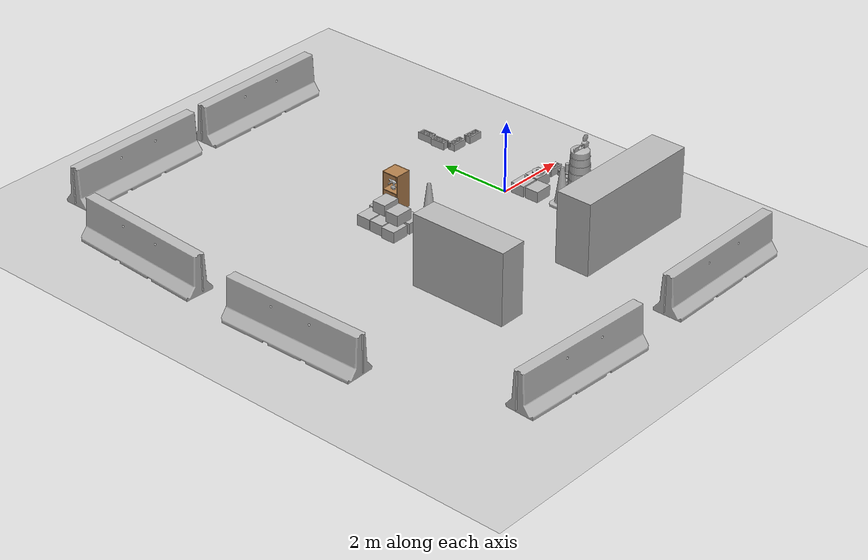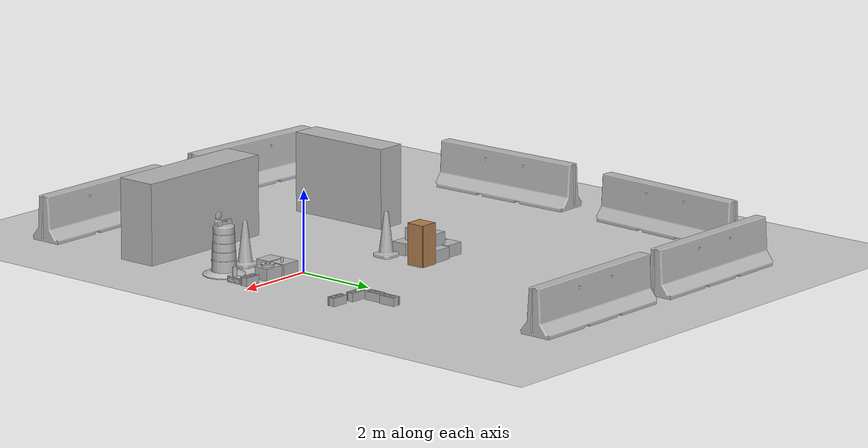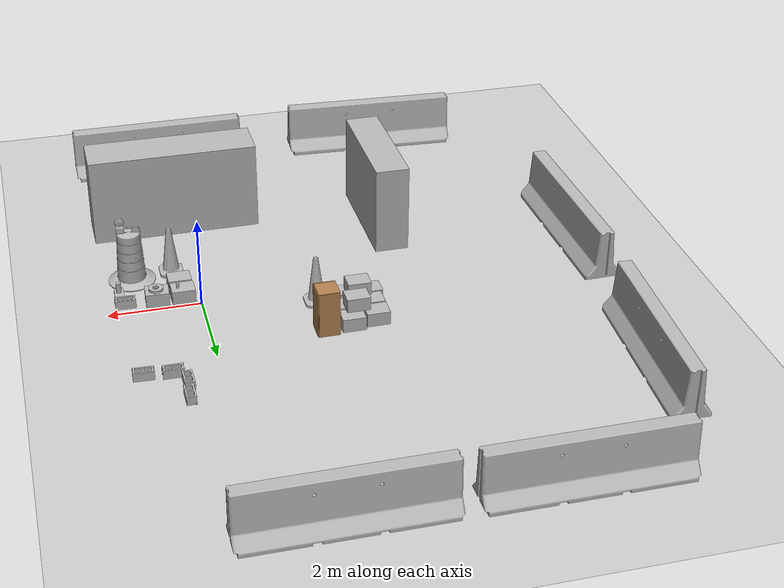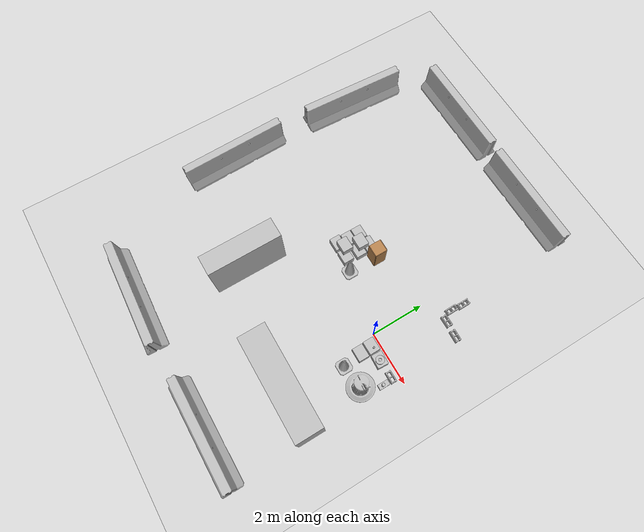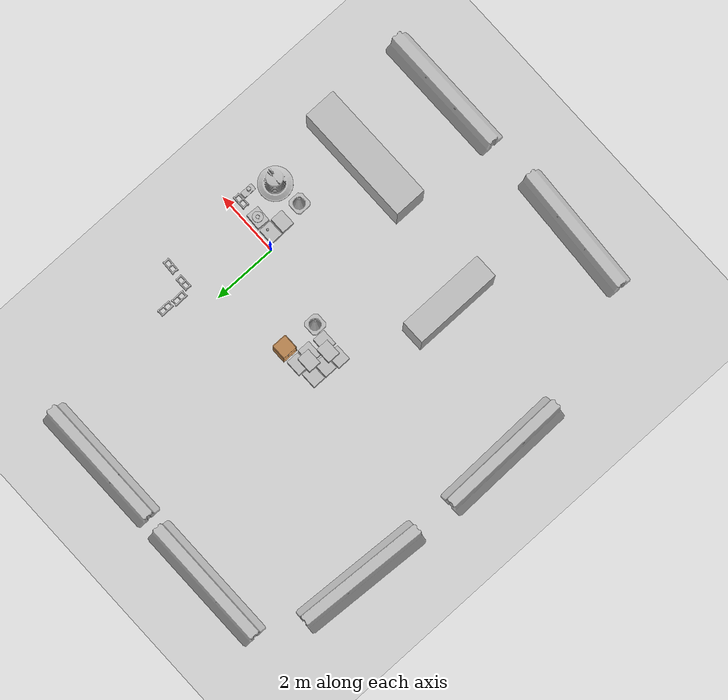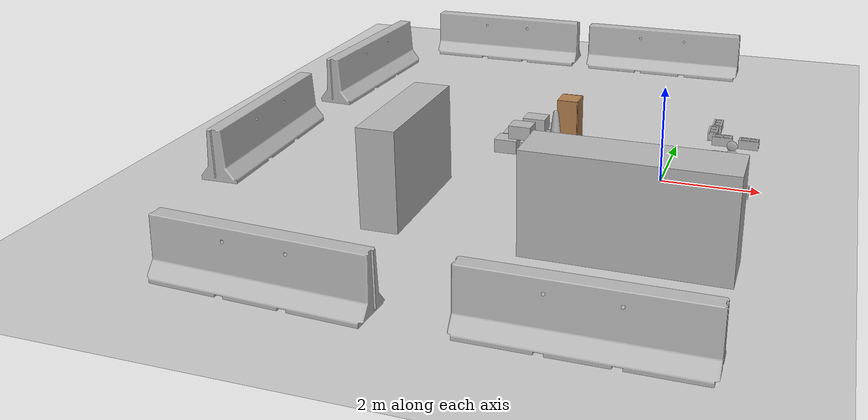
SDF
<sdf version="1.6">
 <world name="default">
  <model name="ground_plane">
   <static>1</static>
   <link name="link">
    <collision name="collision">
     <geometry><plane><normal>0 0 1</normal><size>100 100</size></plane></geometry>
     <surface>
      <contact><collide_bitmask>65535</collide_bitmask></contact>
      <friction><ode><mu>100</mu><mu2>50</mu2></ode></friction>
     </surface>
    </collision>
    <visual name="visual">
     <cast_shadows>0</cast_shadows>
     <geometry><plane><normal>0 0 1</normal><size>100 100</size></plane></geometry>
     <material>
      <script><uri>file://media/materials/scripts/gazebo.material</uri><name>Gazebo/Grey</name></script>
     </material>
    </visual>
   </link>
  </model>
  <model name="cinder_block_1">
   <link name="link">
    <inertial>
     <pose>0 0 0.1016 0 -0 0</pose>
     <mass>5</mass>
     <inertia>
      <ixx>0.028705</ixx>
      <ixy>0</ixy>
      <iyy>0.073708</iyy>
      <ixz>0</ixz>
      <iyz>0</iyz>
      <izz>0.06908</izz>
     </inertia>
    </inertial>
    <visual name="visual">
     <geometry><mesh><uri>model://cinder_block/meshes/cinder_block.dae</uri></mesh></geometry>
    </visual>
    <collision name="left">
     <pose>0 -0.08465 0.1016 0 -0 0</pose>
     <geometry><box><size>0.43495 0.0339 0.2032</size></box></geometry>
     <surface>
      <contact><ode><max_vel>0.1</max_vel><min_depth>0.001</min_depth></ode></contact>
      <friction><ode><mu>1</mu><mu2>1</mu2></ode></friction>
     </surface>
    </collision>
    <collision name="right">
     <pose>0 0.08465 0.1016 0 -0 0</pose>
     <geometry><box><size>0.43495 0.0339 0.2032</size></box></geometry>
     <surface>
      <contact><ode><max_vel>0.1</max_vel><min_depth>0.001</min_depth></ode></contact>
      <friction><ode><mu>1</mu><mu2>1</mu2></ode></friction>
     </surface>
    </collision>
    <collision name="front">
     <pose>0.18625 0 0.1016 0 -0 0</pose>
     <geometry><box><size>0.0339 0.1354 0.203</size></box></geometry>
     <surface>
      <contact><ode><max_vel>0.1</max_vel><min_depth>0.001</min_depth></ode></contact>
      <friction><ode><mu>1</mu><mu2>1</mu2></ode></friction>
     </surface>
    </collision>
    <collision name="middle">
     <pose>0 0 0.1016 0 -0 0</pose>
     <geometry><box><size>0.0339 0.1354 0.203</size></box></geometry>
     <surface>
      <contact><ode><max_vel>0.1</max_vel><min_depth>0.001</min_depth></ode></contact>
      <friction><ode><mu>1</mu><mu2>1</mu2></ode></friction>
     </surface>
    </collision>
    <collision name="back">
     <pose>-0.18625 0 0.1016 0 -0 0</pose>
     <geometry><box><size>0.0339 0.1354 0.203</size></box></geometry>
     <surface>
      <contact><ode><max_vel>0.1</max_vel><min_depth>0.001</min_depth></ode></contact>
      <friction><ode><mu>1</mu><mu2>1</mu2></ode></friction>
     </surface>
    </collision>
   </link>
   <pose>0.951418 2.44157 -0.000578 -8.1e-05 -3.7e-05 0</pose>
  </model>
  <model name="cinder_block_3">
   <link name="link">
    <inertial>
     <pose>0 0 0.1016 0 -0 0</pose>
     <mass>5</mass>
     <inertia>
      <ixx>0.028705</ixx>
      <ixy>0</ixy>
      <iyy>0.073708</iyy>
      <ixz>0</ixz>
      <iyz>0</iyz>
      <izz>0.06908</izz>
     </inertia>
    </inertial>
    <visual name="visual">
     <geometry><mesh><uri>model://cinder_block/meshes/cinder_block.dae</uri></mesh></geometry>
    </visual>
    <collision name="left">
     <pose>0 -0.08465 0.1016 0 -0 0</pose>
     <geometry><box><size>0.43495 0.0339 0.2032</size></box></geometry>
     <surface>
      <contact><ode><max_vel>0.1</max_vel><min_depth>0.001</min_depth></ode></contact>
      <friction><ode><mu>1</mu><mu2>1</mu2></ode></friction>
     </surface>
    </collision>
    <collision name="right">
     <pose>0 0.08465 0.1016 0 -0 0</pose>
     <geometry><box><size>0.43495 0.0339 0.2032</size></box></geometry>
     <surface>
      <contact><ode><max_vel>0.1</max_vel><min_depth>0.001</min_depth></ode></contact>
      <friction><ode><mu>1</mu><mu2>1</mu2></ode></friction>
     </surface>
    </collision>
    <collision name="front">
     <pose>0.18625 0 0.1016 0 -0 0</pose>
     <geometry><box><size>0.0339 0.1354 0.203</size></box></geometry>
     <surface>
      <contact><ode><max_vel>0.1</max_vel><min_depth>0.001</min_depth></ode></contact>
      <friction><ode><mu>1</mu><mu2>1</mu2></ode></friction>
     </surface>
    </collision>
    <collision name="middle">
     <pose>0 0 0.1016 0 -0 0</pose>
     <geometry><box><size>0.0339 0.1354 0.203</size></box></geometry>
     <surface>
      <contact><ode><max_vel>0.1</max_vel><min_depth>0.001</min_depth></ode></contact>
      <friction><ode><mu>1</mu><mu2>1</mu2></ode></friction>
     </surface>
    </collision>
    <collision name="back">
     <pose>-0.18625 0 0.1016 0 -0 0</pose>
     <geometry><box><size>0.0339 0.1354 0.203</size></box></geometry>
     <surface>
      <contact><ode><max_vel>0.1</max_vel><min_depth>0.001</min_depth></ode></contact>
      <friction><ode><mu>1</mu><mu2>1</mu2></ode></friction>
     </surface>
    </collision>
   </link>
   <pose>1.53729 2.39602 -6e-06 3.2e-05 -1.3e-05 3.10413</pose>
  </model>
  <model name="cinder_block_7">
   <link name="link">
    <inertial>
     <pose>0 0 0.1016 0 -0 0</pose>
     <mass>5</mass>
     <inertia>
      <ixx>0.028705</ixx>
      <ixy>0</ixy>
      <iyy>0.073708</iyy>
      <ixz>0</ixz>
      <iyz>0</iyz>
      <izz>0.06908</izz>
     </inertia>
    </inertial>
    <visual name="visual">
     <geometry><mesh><uri>model://cinder_block/meshes/cinder_block.dae</uri></mesh></geometry>
    </visual>
    <collision name="left">
     <pose>0 -0.08465 0.1016 0 -0 0</pose>
     <geometry><box><size>0.43495 0.0339 0.2032</size></box></geometry>
     <surface>
      <contact><ode><max_vel>0.1</max_vel><min_depth>0.001</min_depth></ode></contact>
      <friction><ode><mu>1</mu><mu2>1</mu2></ode></friction>
     </surface>
    </collision>
    <collision name="right">
     <pose>0 0.08465 0.1016 0 -0 0</pose>
     <geometry><box><size>0.43495 0.0339 0.2032</size></box></geometry>
     <surface>
      <contact><ode><max_vel>0.1</max_vel><min_depth>0.001</min_depth></ode></contact>
      <friction><ode><mu>1</mu><mu2>1</mu2></ode></friction>
     </surface>
    </collision>
    <collision name="front">
     <pose>0.18625 0 0.1016 0 -0 0</pose>
     <geometry><box><size>0.0339 0.1354 0.203</size></box></geometry>
     <surface>
      <contact><ode><max_vel>0.1</max_vel><min_depth>0.001</min_depth></ode></contact>
      <friction><ode><mu>1</mu><mu2>1</mu2></ode></friction>
     </surface>
    </collision>
    <collision name="middle">
     <pose>0 0 0.1016 0 -0 0</pose>
     <geometry><box><size>0.0339 0.1354 0.203</size></box></geometry>
     <surface>
      <contact><ode><max_vel>0.1</max_vel><min_depth>0.001</min_depth></ode></contact>
      <friction><ode><mu>1</mu><mu2>1</mu2></ode></friction>
     </surface>
    </collision>
    <collision name="back">
     <pose>-0.18625 0 0.1016 0 -0 0</pose>
     <geometry><box><size>0.0339 0.1354 0.203</size></box></geometry>
     <surface>
      <contact><ode><max_vel>0.1</max_vel><min_depth>0.001</min_depth></ode></contact>
      <friction><ode><mu>1</mu><mu2>1</mu2></ode></friction>
     </surface>
    </collision>
   </link>
   <pose>0.703882 2.81906 -6e-06 5.1e-05 4e-06 1.58968</pose>
  </model>
  <model name="cinder_block_9">
   <link name="link">
    <inertial>
     <pose>0 0 0.1016 0 -0 0</pose>
     <mass>5</mass>
     <inertia>
      <ixx>0.028705</ixx>
      <ixy>0</ixy>
      <iyy>0.073708</iyy>
      <ixz>0</ixz>
      <iyz>0</iyz>
      <izz>0.06908</izz>
     </inertia>
    </inertial>
    <visual name="visual">
     <geometry><mesh><uri>model://cinder_block/meshes/cinder_block.dae</uri></mesh></geometry>
    </visual>
    <collision name="left">
     <pose>0 -0.08465 0.1016 0 -0 0</pose>
     <geometry><box><size>0.43495 0.0339 0.2032</size></box></geometry>
     <surface>
      <contact><ode><max_vel>0.1</max_vel><min_depth>0.001</min_depth></ode></contact>
      <friction><ode><mu>1</mu><mu2>1</mu2></ode></friction>
     </surface>
    </collision>
    <collision name="right">
     <pose>0 0.08465 0.1016 0 -0 0</pose>
     <geometry><box><size>0.43495 0.0339 0.2032</size></box></geometry>
     <surface>
      <contact><ode><max_vel>0.1</max_vel><min_depth>0.001</min_depth></ode></contact>
      <friction><ode><mu>1</mu><mu2>1</mu2></ode></friction>
     </surface>
    </collision>
    <collision name="front">
     <pose>0.18625 0 0.1016 0 -0 0</pose>
     <geometry><box><size>0.0339 0.1354 0.203</size></box></geometry>
     <surface>
      <contact><ode><max_vel>0.1</max_vel><min_depth>0.001</min_depth></ode></contact>
      <friction><ode><mu>1</mu><mu2>1</mu2></ode></friction>
     </surface>
    </collision>
    <collision name="middle">
     <pose>0 0 0.1016 0 -0 0</pose>
     <geometry><box><size>0.0339 0.1354 0.203</size></box></geometry>
     <surface>
      <contact><ode><max_vel>0.1</max_vel><min_depth>0.001</min_depth></ode></contact>
      <friction><ode><mu>1</mu><mu2>1</mu2></ode></friction>
     </surface>
    </collision>
    <collision name="back">
     <pose>-0.18625 0 0.1016 0 -0 0</pose>
     <geometry><box><size>0.0339 0.1354 0.203</size></box></geometry>
     <surface>
      <contact><ode><max_vel>0.1</max_vel><min_depth>0.001</min_depth></ode></contact>
      <friction><ode><mu>1</mu><mu2>1</mu2></ode></friction>
     </surface>
    </collision>
   </link>
   <pose>0.746762 3.29994 -1.2e-05 5.8e-05 5e-06 1.57094</pose>
  </model>
  <model name="brick_box_3x1x3">
   <static>1</static>
   <link name="chassis">
    <pose>0 0 1.5 0 -0 0</pose>
    <collision name="collision"><geometry><box><size>2.75 0.75 2</size></box></geometry></collision>
    <visual name="visual">
     <geometry>
      <mesh><uri>model://brick_box_3x1x3/meshes/simple_box.dae</uri><scale>2.75 0.75 2</scale></mesh>
     </geometry>
     <material>
      <script>
       <uri>model://brick_box_3x1x3/materials/scripts</uri>
       <uri>model://brick_box_3x1x3/materials/textures</uri>
       <name>BrickBox/Diffuse</name>
      </script>
     </material>
    </visual>
   </link>
   <pose>-4.50649 -2.57251 -0.500406 0 -0 1.57353</pose>
  </model>
  <model name="brick_box_3x1x3_0">
   <static>1</static>
   <link name="chassis">
    <pose>0 0 1.5 0 -0 0</pose>
    <collision name="collision"><geometry><box><size>3.75 1 2</size></box></geometry></collision>
    <visual name="visual">
     <geometry>
      <mesh><uri>model://brick_box_3x1x3/meshes/simple_box.dae</uri><scale>3.75 1 2</scale></mesh>
     </geometry>
     <material>
      <script>
       <uri>model://brick_box_3x1x3/materials/scripts</uri>
       <uri>model://brick_box_3x1x3/materials/textures</uri>
       <name>BrickBox/Diffuse</name>
      </script>
     </material>
    </visual>
   </link>
   <pose>0.059682 -3.58681 -0.4981 0 -0 0</pose>
  </model>
  <model name="cardboard_box">
   <pose>0.351262 -0.309418 0.148999 0 -0 0.008584</pose>
   <link name="link">
    <inertial>
     <mass>2</mass>
     <inertia>
      <ixx>0.0416667</ixx>
      <ixy>0</ixy>
      <ixz>0</ixz>
      <iyy>0.0566667</iyy>
      <iyz>0</iyz>
      <izz>0.0683333</izz>
     </inertia>
    </inertial>
    <collision name="collision">
     <geometry><box><size>0.5 0.4 0.3</size></box></geometry>
     <surface>
      <friction><ode><mu>1</mu><mu2>1</mu2></ode></friction>
      <contact><ode><kp>1e+07</kp><kd>1</kd><min_depth>0.001</min_depth><max_vel>0.1</max_vel></ode></contact>
     </surface>
    </collision>
    <visual name="visual">
     <pose>0 0 -0.15 0 -0 0</pose>
     <geometry>
      <mesh><uri>model://cardboard_box/meshes/cardboard_box.dae</uri><scale>1.25932 1.00745 0.755591</scale></mesh>
     </geometry>
    </visual>
   </link>
  </model>
  <model name="cardboard_box_0">
   <pose>0.899367 -0.318719 0.148999 0 -0 -0.047138</pose>
   <link name="link">
    <inertial>
     <mass>2</mass>
     <inertia>
      <ixx>0.0416667</ixx>
      <ixy>0</ixy>
      <ixz>0</ixz>
      <iyy>0.0566667</iyy>
      <iyz>0</iyz>
      <izz>0.0683333</izz>
     </inertia>
    </inertial>
    <collision name="collision">
     <geometry><box><size>0.5 0.4 0.3</size></box></geometry>
     <surface>
      <friction><ode><mu>1</mu><mu2>1</mu2></ode></friction>
      <contact><ode><kp>1e+07</kp><kd>1</kd><min_depth>0.001</min_depth><max_vel>0.1</max_vel></ode></contact>
     </surface>
    </collision>
    <visual name="visual">
     <pose>0 0 -0.15 0 -0 0</pose>
     <geometry>
      <mesh><uri>model://cardboard_box/meshes/cardboard_box.dae</uri><scale>1.25932 1.00745 0.755591</scale></mesh>
     </geometry>
    </visual>
   </link>
  </model>
  <model name="cardboard_box_1">
   <pose>0.364981 -0.755145 0.149 0 -0 0</pose>
   <link name="link">
    <inertial>
     <mass>2</mass>
     <inertia>
      <ixx>0.0416667</ixx>
      <ixy>0</ixy>
      <ixz>0</ixz>
      <iyy>0.0566667</iyy>
      <iyz>0</iyz>
      <izz>0.0683333</izz>
     </inertia>
    </inertial>
    <collision name="collision">
     <geometry><box><size>0.5 0.4 0.3</size></box></geometry>
     <surface>
      <friction><ode><mu>1</mu><mu2>1</mu2></ode></friction>
      <contact><ode><kp>1e+07</kp><kd>1</kd><min_depth>0.001</min_depth><max_vel>0.1</max_vel></ode></contact>
     </surface>
    </collision>
    <visual name="visual">
     <pose>0 0 -0.15 0 -0 0</pose>
     <geometry>
      <mesh><uri>model://cardboard_box/meshes/cardboard_box.dae</uri><scale>1.25932 1.00745 0.755591</scale></mesh>
     </geometry>
    </visual>
   </link>
  </model>
  <model name="cardboard_box_3">
   <pose>-3.44032 1.51609 0.148999 0 -0 4e-06</pose>
   <link name="link">
    <inertial>
     <mass>2</mass>
     <inertia>
      <ixx>0.0416667</ixx>
      <ixy>0</ixy>
      <ixz>0</ixz>
      <iyy>0.0566667</iyy>
      <iyz>0</iyz>
      <izz>0.0683333</izz>
     </inertia>
    </inertial>
    <collision name="collision">
     <geometry><box><size>0.5 0.4 0.3</size></box></geometry>
     <surface>
      <friction><ode><mu>1</mu><mu2>1</mu2></ode></friction>
      <contact><ode><kp>1e+07</kp><kd>1</kd><min_depth>0.001</min_depth><max_vel>0.1</max_vel></ode></contact>
     </surface>
    </collision>
    <visual name="visual">
     <pose>0 0 -0.15 0 -0 0</pose>
     <geometry>
      <mesh><uri>model://cardboard_box/meshes/cardboard_box.dae</uri><scale>1.25932 1.00745 0.755591</scale></mesh>
     </geometry>
    </visual>
   </link>
  </model>
  <model name="cardboard_box_4">
   <pose>-2.87775 1.15958 0.148999 2e-06 -1e-06 -0.002698</pose>
   <link name="link">
    <inertial>
     <mass>2</mass>
     <inertia>
      <ixx>0.0416667</ixx>
      <ixy>0</ixy>
      <ixz>0</ixz>
      <iyy>0.0566667</iyy>
      <iyz>0</iyz>
      <izz>0.0683333</izz>
     </inertia>
    </inertial>
    <collision name="collision">
     <geometry><box><size>0.5 0.4 0.3</size></box></geometry>
     <surface>
      <friction><ode><mu>1</mu><mu2>1</mu2></ode></friction>
      <contact><ode><kp>1e+07</kp><kd>1</kd><min_depth>0.001</min_depth><max_vel>0.1</max_vel></ode></contact>
     </surface>
    </collision>
    <visual name="visual">
     <pose>0 0 -0.15 0 -0 0</pose>
     <geometry>
      <mesh><uri>model://cardboard_box/meshes/cardboard_box.dae</uri><scale>1.25932 1.00745 0.755591</scale></mesh>
     </geometry>
    </visual>
   </link>
  </model>
  <model name="cardboard_box_5">
   <pose>-2.92739 0.64016 0.148999 0 -0 6e-06</pose>
   <link name="link">
    <inertial>
     <mass>2</mass>
     <inertia>
      <ixx>0.0416667</ixx>
      <ixy>0</ixy>
      <ixz>0</ixz>
      <iyy>0.0566667</iyy>
      <iyz>0</iyz>
      <izz>0.0683333</izz>
     </inertia>
    </inertial>
    <collision name="collision">
     <geometry><box><size>0.5 0.4 0.3</size></box></geometry>
     <surface>
      <friction><ode><mu>1</mu><mu2>1</mu2></ode></friction>
      <contact><ode><kp>1e+07</kp><kd>1</kd><min_depth>0.001</min_depth><max_vel>0.1</max_vel></ode></contact>
     </surface>
    </collision>
    <visual name="visual">
     <pose>0 0 -0.15 0 -0 0</pose>
     <geometry>
      <mesh><uri>model://cardboard_box/meshes/cardboard_box.dae</uri><scale>1.25932 1.00745 0.755591</scale></mesh>
     </geometry>
    </visual>
   </link>
  </model>
  <model name="cardboard_box_6">
   <pose>-3.50197 0.643154 0.148999 0 1e-06 1e-06</pose>
   <link name="link">
    <inertial>
     <mass>2</mass>
     <inertia>
      <ixx>0.0416667</ixx>
      <ixy>0</ixy>
      <ixz>0</ixz>
      <iyy>0.0566667</iyy>
      <iyz>0</iyz>
      <izz>0.0683333</izz>
     </inertia>
    </inertial>
    <collision name="collision">
     <geometry><box><size>0.5 0.4 0.3</size></box></geometry>
     <surface>
      <friction><ode><mu>1</mu><mu2>1</mu2></ode></friction>
      <contact><ode><kp>1e+07</kp><kd>1</kd><min_depth>0.001</min_depth><max_vel>0.1</max_vel></ode></contact>
     </surface>
    </collision>
    <visual name="visual">
     <pose>0 0 -0.15 0 -0 0</pose>
     <geometry>
      <mesh><uri>model://cardboard_box/meshes/cardboard_box.dae</uri><scale>1.25932 1.00745 0.755591</scale></mesh>
     </geometry>
    </visual>
   </link>
  </model>
  <model name="cardboard_box_7">
   <pose>-3.44541 1.07868 0.148999 0 1e-06 -2.4e-05</pose>
   <link name="link">
    <inertial>
     <mass>2</mass>
     <inertia>
      <ixx>0.0416667</ixx>
      <ixy>0</ixy>
      <ixz>0</ixz>
      <iyy>0.0566667</iyy>
      <iyz>0</iyz>
      <izz>0.0683333</izz>
     </inertia>
    </inertial>
    <collision name="collision">
     <geometry><box><size>0.5 0.4 0.3</size></box></geometry>
     <surface>
      <friction><ode><mu>1</mu><mu2>1</mu2></ode></friction>
      <contact><ode><kp>1e+07</kp><kd>1</kd><min_depth>0.001</min_depth><max_vel>0.1</max_vel></ode></contact>
     </surface>
    </collision>
    <visual name="visual">
     <pose>0 0 -0.15 0 -0 0</pose>
     <geometry>
      <mesh><uri>model://cardboard_box/meshes/cardboard_box.dae</uri><scale>1.25932 1.00745 0.755591</scale></mesh>
     </geometry>
    </visual>
   </link>
  </model>
  <model name="cardboard_box_8">
   <pose>-2.90415 1.60188 0.148999 -0 -0 -0.000758</pose>
   <link name="link">
    <inertial>
     <mass>2</mass>
     <inertia>
      <ixx>0.0416667</ixx>
      <ixy>0</ixy>
      <ixz>0</ixz>
      <iyy>0.0566667</iyy>
      <iyz>0</iyz>
      <izz>0.0683333</izz>
     </inertia>
    </inertial>
    <collision name="collision">
     <geometry><box><size>0.5 0.4 0.3</size></box></geometry>
     <surface>
      <friction><ode><mu>1</mu><mu2>1</mu2></ode></friction>
      <contact><ode><kp>1e+07</kp><kd>1</kd><min_depth>0.001</min_depth><max_vel>0.1</max_vel></ode></contact>
     </surface>
    </collision>
    <visual name="visual">
     <pose>0 0 -0.15 0 -0 0</pose>
     <geometry>
      <mesh><uri>model://cardboard_box/meshes/cardboard_box.dae</uri><scale>1.25932 1.00745 0.755591</scale></mesh>
     </geometry>
    </visual>
   </link>
  </model>
  <model name="cardboard_box_9">
   <pose>-3.05923 1.33821 0.447999 0 0 -0.000268</pose>
   <link name="link">
    <inertial>
     <mass>2</mass>
     <inertia>
      <ixx>0.0416667</ixx>
      <ixy>0</ixy>
      <ixz>0</ixz>
      <iyy>0.0566667</iyy>
      <iyz>0</iyz>
      <izz>0.0683333</izz>
     </inertia>
    </inertial>
    <collision name="collision">
     <geometry><box><size>0.5 0.4 0.3</size></box></geometry>
     <surface>
      <friction><ode><mu>1</mu><mu2>1</mu2></ode></friction>
      <contact><ode><kp>1e+07</kp><kd>1</kd><min_depth>0.001</min_depth><max_vel>0.1</max_vel></ode></contact>
     </surface>
    </collision>
    <visual name="visual">
     <pose>0 0 -0.15 0 -0 0</pose>
     <geometry>
      <mesh><uri>model://cardboard_box/meshes/cardboard_box.dae</uri><scale>1.25932 1.00745 0.755591</scale></mesh>
     </geometry>
    </visual>
   </link>
  </model>
  <model name="cardboard_box_10">
   <pose>-3.21992 0.770566 0.448013 7.2e-05 -3e-06 -1.9e-05</pose>
   <link name="link">
    <inertial>
     <mass>2</mass>
     <inertia>
      <ixx>0.0416667</ixx>
      <ixy>0</ixy>
      <ixz>0</ixz>
      <iyy>0.0566667</iyy>
      <iyz>0</iyz>
      <izz>0.0683333</izz>
     </inertia>
    </inertial>
    <collision name="collision">
     <geometry><box><size>0.5 0.4 0.3</size></box></geometry>
     <surface>
      <friction><ode><mu>1</mu><mu2>1</mu2></ode></friction>
      <contact><ode><kp>1e+07</kp><kd>1</kd><min_depth>0.001</min_depth><max_vel>0.1</max_vel></ode></contact>
     </surface>
    </collision>
    <visual name="visual">
     <pose>0 0 -0.15 0 -0 0</pose>
     <geometry>
      <mesh><uri>model://cardboard_box/meshes/cardboard_box.dae</uri><scale>1.25932 1.00745 0.755591</scale></mesh>
     </geometry>
    </visual>
   </link>
  </model>
  <model name="cabinet">
   <static>1</static>
   <link name="cabinet_bottom_plate">
    <inertial>
     <pose>0 0 -1 0 -0 0</pose>
     <inertia><ixx>2.05</ixx><ixy>0</ixy><ixz>0</ixz><iyy>2.05</iyy><iyz>0</iyz><izz>2.05</izz></inertia>
     <mass>25</mass>
    </inertial>
    <collision name="cabinet_bottom_plate_geom">
     <pose>0 0 0.01 0 -0 0</pose>
     <geometry><box><size>0.45 0.45 0.02</size></box></geometry>
    </collision>
    <visual name="cabinet_bottom_plate_geom_visual">
     <pose>0 0 0.01 0 -0 0</pose>
     <geometry><box><size>0.45 0.45 0.02</size></box></geometry>
     <material>
      <script><uri>file://media/materials/scripts/gazebo.material</uri><name>Gazebo/Wood</name></script>
     </material>
    </visual>
    <collision name="cabinet_bottom_plate_geom_cabinet_back_plate">
     <pose>0.235 0 0.51 0 -0 0</pose>
     <geometry><box><size>0.02 0.45 1.02</size></box></geometry>
    </collision>
    <visual name="cabinet_bottom_plate_geom_cabinet_back_plate_visual">
     <pose>0.235 0 0.51 0 -0 0</pose>
     <geometry><box><size>0.02 0.45 1.02</size></box></geometry>
     <material>
      <script><uri>file://media/materials/scripts/gazebo.material</uri><name>Gazebo/Wood</name></script>
     </material>
    </visual>
    <collision name="cabinet_bottom_plate_geom_cabinet_left_plate">
     <pose>0 0.235 0.51 0 -0 0</pose>
     <geometry><box><size>0.45 0.02 1.02</size></box></geometry>
    </collision>
    <visual name="cabinet_bottom_plate_geom_cabinet_left_plate_visual">
     <pose>0 0.235 0.51 0 -0 0</pose>
     <geometry><box><size>0.45 0.02 1.02</size></box></geometry>
     <material>
      <script><uri>file://media/materials/scripts/gazebo.material</uri><name>Gazebo/Wood</name></script>
     </material>
    </visual>
    <collision name="cabinet_bottom_plate_geom_cabinet_middle_plate">
     <pose>0 0 0.51 0 -0 0</pose>
     <geometry><box><size>0.45 0.45 0.02</size></box></geometry>
    </collision>
    <visual name="cabinet_bottom_plate_geom_cabinet_middle_plate_visual">
     <pose>0 0 0.51 0 -0 0</pose>
     <geometry><box><size>0.45 0.45 0.02</size></box></geometry>
     <material>
      <script><uri>file://media/materials/scripts/gazebo.material</uri><name>Gazebo/Wood</name></script>
     </material>
    </visual>
    <collision name="cabinet_bottom_plate_geom_cabinet_right_plate">
     <pose>0 -0.235 0.51 0 -0 0</pose>
     <geometry><box><size>0.45 0.02 1.02</size></box></geometry>
    </collision>
    <visual name="cabinet_bottom_plate_geom_cabinet_right_plate_visual">
     <pose>0 -0.235 0.51 0 -0 0</pose>
     <geometry><box><size>0.45 0.02 1.02</size></box></geometry>
     <material>
      <script><uri>file://media/materials/scripts/gazebo.material</uri><name>Gazebo/Wood</name></script>
     </material>
    </visual>
    <collision name="cabinet_bottom_plate_geom_cabinet_top_plate">
     <pose>0 0 1.01 0 -0 0</pose>
     <geometry><box><size>0.45 0.45 0.02</size></box></geometry>
    </collision>
    <visual name="cabinet_bottom_plate_geom_cabinet_top_plate_visual">
     <pose>0 0 1.01 0 -0 0</pose>
     <geometry><box><size>0.45 0.45 0.02</size></box></geometry>
     <material>
      <script><uri>file://media/materials/scripts/gazebo.material</uri><name>Gazebo/Wood</name></script>
     </material>
    </visual>
   </link>
   <pose>-2.36256 1.6098 0 0 -0 0</pose>
  </model>
  <model name="Construction Cone">
   <link name="link">
    <collision name="collision">
     <geometry>
      <mesh><scale>10 10 10</scale><uri>model://construction_cone/meshes/construction_cone.dae</uri></mesh>
     </geometry>
    </collision>
    <visual name="visual">
     <geometry>
      <mesh><scale>10 10 10</scale><uri>model://construction_cone/meshes/construction_cone.dae</uri></mesh>
     </geometry>
    </visual>
    <inertial>
     <inertia><ixx>1</ixx><ixy>0</ixy><ixz>0</ixz><iyy>1</iyy><iyz>0</iyz><izz>1</izz></inertia>
     <mass>1</mass>
    </inertial>
   </link>
   <pose>-2.38126 0.492398 -0 0 -1e-06 0</pose>
  </model>
  <model name="Construction Barrel">
   <link name="link">
    <inertial>
     <pose>0 0 0.4 0 -0 0</pose>
     <mass>500</mass>
     <inertia><ixx>51.2096</ixx><iyy>51.2096</iyy><izz>25</izz><ixy>0</ixy><ixz>0</ixz><iyz>0</iyz></inertia>
    </inertial>
    <collision name="collision">
     <geometry><mesh><uri>model://construction_barrel/meshes/construction_barrel.dae</uri></mesh></geometry>
    </collision>
    <visual name="visual">
     <geometry><mesh><uri>model://construction_barrel/meshes/construction_barrel.dae</uri></mesh></geometry>
    </visual>
   </link>
   <pose>1.31689 -1.34359 -1e-06 2e-06 -2e-06 -0.054112</pose>
  </model>
  <model name="drill">
   <link name="link">
    <inertial>
     <pose>-0.00637 -0.008 0.13254 0 -0 0</pose>
     <inertia>
      <ixx>0.0133113</ixx>
      <ixy>-0.00030365</ixy>
      <ixz>-0.00034148</ixz>
      <iyy>0.0115766</iyy>
      <iyz>0.00088073</iyz>
      <izz>0.00378028</izz>
     </inertia>
     <mass>1.50252</mass>
    </inertial>
    <collision name="collision">
     <pose>0 0 -0.09 0 -0 0</pose>
     <geometry><mesh><uri>model://cordless_drill/meshes/cordless_drill.stl</uri></mesh></geometry>
     <surface><contact><ode><max_vel>0.1</max_vel><min_depth>0.001</min_depth></ode></contact></surface>
    </collision>
    <visual name="visual">
     <pose>0 0 -0.09 0 -0 0</pose>
     <geometry><mesh><uri>model://cordless_drill/meshes/cordless_drill.dae</uri></mesh></geometry>
    </visual>
   </link>
   <pose>-2.43852 1.64547 0.517932 2e-06 -6e-06 0.06053</pose>
  </model>
  <model name="disk_part">
   <link name="link">
    <inertial>
     <pose>0 0 0.02895 0 -0 0</pose>
     <mass>0.5</mass>
     <inertia>
      <ixx>0.00321218</ixx>
      <ixy>0</ixy>
      <ixz>0</ixz>
      <iyy>0.00321218</iyy>
      <iyz>0</iyz>
      <izz>0.00614499</izz>
     </inertia>
    </inertial>
    <collision name="collision">
     <pose>0 0 0.02895 0 -0 0</pose>
     <geometry><cylinder><length>0.0579</length><radius>0.15678</radius></cylinder></geometry>
    </collision>
    <visual name="visual">
     <geometry><mesh><uri>model://disk_part/meshes/disk.dae</uri></mesh></geometry>
     <material>
      <script>
       <uri>model://arm_part/materials/scripts</uri>
       <uri>model://arm_part/materials/textures</uri>
       <name>ArmPart/Diffuse</name>
      </script>
     </material>
    </visual>
   </link>
   <pose>0.914315 -0.325196 0.299004 -1e-06 -8.4e-05 -0.003321</pose>
  </model>
  <model name="Construction Cone_1">
   <link name="link">
    <collision name="collision">
     <geometry>
      <mesh><scale>10 10 10</scale><uri>model://construction_cone/meshes/construction_cone.dae</uri></mesh>
     </geometry>
    </collision>
    <visual name="visual">
     <geometry>
      <mesh><scale>10 10 10</scale><uri>model://construction_cone/meshes/construction_cone.dae</uri></mesh>
     </geometry>
    </visual>
    <inertial>
     <inertia><ixx>1</ixx><ixy>0</ixy><ixz>0</ixz><iyy>1</iyy><iyz>0</iyz><izz>1</izz></inertia>
     <mass>1</mass>
    </inertial>
   </link>
   <pose>0.443964 -1.46788 -1e-05 -1e-06 0 0</pose>
  </model>
  <model name="cinder_block_static_3">
   <link name="link">
    <inertial>
     <pose>0 0 0.1016 0 -0 0</pose>
     <mass>5</mass>
     <inertia>
      <ixx>0.028705</ixx>
      <ixy>0</ixy>
      <iyy>0.073708</iyy>
      <ixz>0</ixz>
      <iyz>0</iyz>
      <izz>0.06908</izz>
     </inertia>
    </inertial>
    <visual name="visual">
     <geometry><mesh><uri>model://cinder_block/meshes/cinder_block.dae</uri></mesh></geometry>
    </visual>
    <collision name="left">
     <pose>0 -0.08465 0.1016 0 -0 0</pose>
     <geometry><box><size>0.43495 0.0339 0.2032</size></box></geometry>
     <surface>
      <friction>
       <ode><mu>1</mu><mu2>1</mu2><fdir1>0 0 0</fdir1><slip1>0</slip1><slip2>0</slip2></ode>
       <torsional>
        <coefficient>1</coefficient>
        <patch_radius>0</patch_radius>
        <surface_radius>0</surface_radius>
        <use_patch_radius>1</use_patch_radius>
        <ode><slip>0</slip></ode>
       </torsional>
      </friction>
      <bounce><restitution_coefficient>0</restitution_coefficient><threshold>1e+06</threshold></bounce>
      <contact>
       <collide_without_contact>0</collide_without_contact>
       <collide_without_contact_bitmask>1</collide_without_contact_bitmask>
       <collide_bitmask>1</collide_bitmask>
       <ode>
        <soft_cfm>0</soft_cfm>
        <soft_erp>0.2</soft_erp>
        <kp>1e+13</kp>
        <kd>1</kd>
        <max_vel>0.1</max_vel>
        <min_depth>0.001</min_depth>
       </ode>
       <bullet>
        <split_impulse>1</split_impulse>
        <split_impulse_penetration_threshold>-0.01</split_impulse_penetration_threshold>
        <soft_cfm>0</soft_cfm>
        <soft_erp>0.2</soft_erp>
        <kp>1e+13</kp>
        <kd>1</kd>
       </bullet>
      </contact>
     </surface>
    </collision>
    <collision name="right">
     <pose>0 0.08465 0.1016 0 -0 0</pose>
     <geometry><box><size>0.43495 0.0339 0.2032</size></box></geometry>
     <surface>
      <friction>
       <ode><mu>1</mu><mu2>1</mu2><fdir1>0 0 0</fdir1><slip1>0</slip1><slip2>0</slip2></ode>
       <torsional>
        <coefficient>1</coefficient>
        <patch_radius>0</patch_radius>
        <surface_radius>0</surface_radius>
        <use_patch_radius>1</use_patch_radius>
        <ode><slip>0</slip></ode>
       </torsional>
      </friction>
      <bounce><restitution_coefficient>0</restitution_coefficient><threshold>1e+06</threshold></bounce>
      <contact>
       <collide_without_contact>0</collide_without_contact>
       <collide_without_contact_bitmask>1</collide_without_contact_bitmask>
       <collide_bitmask>1</collide_bitmask>
       <ode>
        <soft_cfm>0</soft_cfm>
        <soft_erp>0.2</soft_erp>
        <kp>1e+13</kp>
        <kd>1</kd>
        <max_vel>0.1</max_vel>
        <min_depth>0.001</min_depth>
       </ode>
       <bullet>
        <split_impulse>1</split_impulse>
        <split_impulse_penetration_threshold>-0.01</split_impulse_penetration_threshold>
        <soft_cfm>0</soft_cfm>
        <soft_erp>0.2</soft_erp>
        <kp>1e+13</kp>
        <kd>1</kd>
       </bullet>
      </contact>
     </surface>
    </collision>
    <collision name="front">
     <pose>0.18625 0 0.1016 0 -0 0</pose>
     <geometry><box><size>0.0339 0.1354 0.203</size></box></geometry>
     <surface>
      <friction>
       <ode><mu>1</mu><mu2>1</mu2><fdir1>0 0 0</fdir1><slip1>0</slip1><slip2>0</slip2></ode>
       <torsional>
        <coefficient>1</coefficient>
        <patch_radius>0</patch_radius>
        <surface_radius>0</surface_radius>
        <use_patch_radius>1</use_patch_radius>
        <ode><slip>0</slip></ode>
       </torsional>
      </friction>
      <bounce><restitution_coefficient>0</restitution_coefficient><threshold>1e+06</threshold></bounce>
      <contact>
       <collide_without_contact>0</collide_without_contact>
       <collide_without_contact_bitmask>1</collide_without_contact_bitmask>
       <collide_bitmask>1</collide_bitmask>
       <ode>
        <soft_cfm>0</soft_cfm>
        <soft_erp>0.2</soft_erp>
        <kp>1e+13</kp>
        <kd>1</kd>
        <max_vel>0.1</max_vel>
        <min_depth>0.001</min_depth>
       </ode>
       <bullet>
        <split_impulse>1</split_impulse>
        <split_impulse_penetration_threshold>-0.01</split_impulse_penetration_threshold>
        <soft_cfm>0</soft_cfm>
        <soft_erp>0.2</soft_erp>
        <kp>1e+13</kp>
        <kd>1</kd>
       </bullet>
      </contact>
     </surface>
    </collision>
    <collision name="middle">
     <pose>0 0 0.1016 0 -0 0</pose>
     <geometry><box><size>0.0339 0.1354 0.203</size></box></geometry>
     <surface>
      <friction>
       <ode><mu>1</mu><mu2>1</mu2><fdir1>0 0 0</fdir1><slip1>0</slip1><slip2>0</slip2></ode>
       <torsional>
        <coefficient>1</coefficient>
        <patch_radius>0</patch_radius>
        <surface_radius>0</surface_radius>
        <use_patch_radius>1</use_patch_radius>
        <ode><slip>0</slip></ode>
       </torsional>
      </friction>
      <bounce><restitution_coefficient>0</restitution_coefficient><threshold>1e+06</threshold></bounce>
      <contact>
       <collide_without_contact>0</collide_without_contact>
       <collide_without_contact_bitmask>1</collide_without_contact_bitmask>
       <collide_bitmask>1</collide_bitmask>
       <ode>
        <soft_cfm>0</soft_cfm>
        <soft_erp>0.2</soft_erp>
        <kp>1e+13</kp>
        <kd>1</kd>
        <max_vel>0.1</max_vel>
        <min_depth>0.001</min_depth>
       </ode>
       <bullet>
        <split_impulse>1</split_impulse>
        <split_impulse_penetration_threshold>-0.01</split_impulse_penetration_threshold>
        <soft_cfm>0</soft_cfm>
        <soft_erp>0.2</soft_erp>
        <kp>1e+13</kp>
        <kd>1</kd>
       </bullet>
      </contact>
     </surface>
    </collision>
    <collision name="back">
     <pose>-0.18625 0 0.1016 0 -0 0</pose>
     <geometry><box><size>0.0339 0.1354 0.203</size></box></geometry>
     <surface>
      <friction>
       <ode><mu>1</mu><mu2>1</mu2><fdir1>0 0 0</fdir1><slip1>0</slip1><slip2>0</slip2></ode>
       <torsional>
        <coefficient>1</coefficient>
        <patch_radius>0</patch_radius>
        <surface_radius>0</surface_radius>
        <use_patch_radius>1</use_patch_radius>
        <ode><slip>0</slip></ode>
       </torsional>
      </friction>
      <bounce><restitution_coefficient>0</restitution_coefficient><threshold>1e+06</threshold></bounce>
      <contact>
       <collide_without_contact>0</collide_without_contact>
       <collide_without_contact_bitmask>1</collide_without_contact_bitmask>
       <collide_bitmask>1</collide_bitmask>
       <ode>
        <soft_cfm>0</soft_cfm>
        <soft_erp>0.2</soft_erp>
        <kp>1e+13</kp>
        <kd>1</kd>
        <max_vel>0.1</max_vel>
        <min_depth>0.001</min_depth>
       </ode>
       <bullet>
        <split_impulse>1</split_impulse>
        <split_impulse_penetration_threshold>-0.01</split_impulse_penetration_threshold>
        <soft_cfm>0</soft_cfm>
        <soft_erp>0.2</soft_erp>
        <kp>1e+13</kp>
        <kd>1</kd>
       </bullet>
      </contact>
     </surface>
    </collision>
   </link>
   <static>1</static>
   <pose>1.58076 -0.292845 0 0 -0 0</pose>
  </model>
  <model name="cinder_block_2_static_4">
   <link name="link">
    <inertial>
     <pose>0 0 0.071438 0 -0 0</pose>
     <mass>5</mass>
     <inertia>
      <ixx>0.06908</ixx>
      <ixy>0</ixy>
      <iyy>0.028705</iyy>
      <ixz>0</ixz>
      <iyz>0</iyz>
      <izz>0.073708</izz>
     </inertia>
    </inertial>
    <visual name="visual">
     <geometry><mesh><uri>model://cinder_block_2/meshes/cinder_block.dae</uri></mesh></geometry>
    </visual>
    <collision name="top">
     <pose>0 0 0.130175 0 -0 0</pose>
     <geometry><box><size>0.19368 0.396875 0.0254</size></box></geometry>
     <surface>
      <friction>
       <ode><mu>1</mu><mu2>1</mu2><fdir1>0 0 0</fdir1><slip1>0</slip1><slip2>0</slip2></ode>
       <torsional>
        <coefficient>1</coefficient>
        <patch_radius>0</patch_radius>
        <surface_radius>0</surface_radius>
        <use_patch_radius>1</use_patch_radius>
        <ode><slip>0</slip></ode>
       </torsional>
      </friction>
      <bounce><restitution_coefficient>0</restitution_coefficient><threshold>1e+06</threshold></bounce>
      <contact>
       <collide_without_contact>0</collide_without_contact>
       <collide_without_contact_bitmask>1</collide_without_contact_bitmask>
       <collide_bitmask>1</collide_bitmask>
       <ode>
        <soft_cfm>0</soft_cfm>
        <soft_erp>0.2</soft_erp>
        <kp>1e+13</kp>
        <kd>1</kd>
        <max_vel>0.1</max_vel>
        <min_depth>0.001</min_depth>
       </ode>
       <bullet>
        <split_impulse>1</split_impulse>
        <split_impulse_penetration_threshold>-0.01</split_impulse_penetration_threshold>
        <soft_cfm>0</soft_cfm>
        <soft_erp>0.2</soft_erp>
        <kp>1e+13</kp>
        <kd>1</kd>
       </bullet>
      </contact>
     </surface>
    </collision>
    <collision name="bottom">
     <pose>0 0 0.0127 0 -0 0</pose>
     <geometry><box><size>0.19368 0.396875 0.0254</size></box></geometry>
     <surface>
      <friction>
       <ode><mu>1</mu><mu2>1</mu2><fdir1>0 0 0</fdir1><slip1>0</slip1><slip2>0</slip2></ode>
       <torsional>
        <coefficient>1</coefficient>
        <patch_radius>0</patch_radius>
        <surface_radius>0</surface_radius>
        <use_patch_radius>1</use_patch_radius>
        <ode><slip>0</slip></ode>
       </torsional>
      </friction>
      <bounce><restitution_coefficient>0</restitution_coefficient><threshold>1e+06</threshold></bounce>
      <contact>
       <collide_without_contact>0</collide_without_contact>
       <collide_without_contact_bitmask>1</collide_without_contact_bitmask>
       <collide_bitmask>1</collide_bitmask>
       <ode>
        <soft_cfm>0</soft_cfm>
        <soft_erp>0.2</soft_erp>
        <kp>1e+13</kp>
        <kd>1</kd>
        <max_vel>0.1</max_vel>
        <min_depth>0.001</min_depth>
       </ode>
       <bullet>
        <split_impulse>1</split_impulse>
        <split_impulse_penetration_threshold>-0.01</split_impulse_penetration_threshold>
        <soft_cfm>0</soft_cfm>
        <soft_erp>0.2</soft_erp>
        <kp>1e+13</kp>
        <kd>1</kd>
       </bullet>
      </contact>
     </surface>
    </collision>
    <collision name="left">
     <pose>0 -0.185738 0.071438 0 -0 0</pose>
     <geometry><box><size>0.19368 0.0254 0.092075</size></box></geometry>
     <surface>
      <friction>
       <ode><mu>1</mu><mu2>1</mu2><fdir1>0 0 0</fdir1><slip1>0</slip1><slip2>0</slip2></ode>
       <torsional>
        <coefficient>1</coefficient>
        <patch_radius>0</patch_radius>
        <surface_radius>0</surface_radius>
        <use_patch_radius>1</use_patch_radius>
        <ode><slip>0</slip></ode>
       </torsional>
      </friction>
      <bounce><restitution_coefficient>0</restitution_coefficient><threshold>1e+06</threshold></bounce>
      <contact>
       <collide_without_contact>0</collide_without_contact>
       <collide_without_contact_bitmask>1</collide_without_contact_bitmask>
       <collide_bitmask>1</collide_bitmask>
       <ode>
        <soft_cfm>0</soft_cfm>
        <soft_erp>0.2</soft_erp>
        <kp>1e+13</kp>
        <kd>1</kd>
        <max_vel>0.1</max_vel>
        <min_depth>0.001</min_depth>
       </ode>
       <bullet>
        <split_impulse>1</split_impulse>
        <split_impulse_penetration_threshold>-0.01</split_impulse_penetration_threshold>
        <soft_cfm>0</soft_cfm>
        <soft_erp>0.2</soft_erp>
        <kp>1e+13</kp>
        <kd>1</kd>
       </bullet>
      </contact>
     </surface>
    </collision>
    <collision name="middle">
     <pose>0 0 0.071438 0 -0 0</pose>
     <geometry><box><size>0.19368 0.0254 0.092075</size></box></geometry>
     <surface>
      <friction>
       <ode><mu>1</mu><mu2>1</mu2><fdir1>0 0 0</fdir1><slip1>0</slip1><slip2>0</slip2></ode>
       <torsional>
        <coefficient>1</coefficient>
        <patch_radius>0</patch_radius>
        <surface_radius>0</surface_radius>
        <use_patch_radius>1</use_patch_radius>
        <ode><slip>0</slip></ode>
       </torsional>
      </friction>
      <bounce><restitution_coefficient>0</restitution_coefficient><threshold>1e+06</threshold></bounce>
      <contact>
       <collide_without_contact>0</collide_without_contact>
       <collide_without_contact_bitmask>1</collide_without_contact_bitmask>
       <collide_bitmask>1</collide_bitmask>
       <ode>
        <soft_cfm>0</soft_cfm>
        <soft_erp>0.2</soft_erp>
        <kp>1e+13</kp>
        <kd>1</kd>
        <max_vel>0.1</max_vel>
        <min_depth>0.001</min_depth>
       </ode>
       <bullet>
        <split_impulse>1</split_impulse>
        <split_impulse_penetration_threshold>-0.01</split_impulse_penetration_threshold>
        <soft_cfm>0</soft_cfm>
        <soft_erp>0.2</soft_erp>
        <kp>1e+13</kp>
        <kd>1</kd>
       </bullet>
      </contact>
     </surface>
    </collision>
    <collision name="right">
     <pose>0 0.185738 0.071438 0 -0 0</pose>
     <geometry><box><size>0.19368 0.0254 0.092075</size></box></geometry>
     <surface>
      <friction>
       <ode><mu>1</mu><mu2>1</mu2><fdir1>0 0 0</fdir1><slip1>0</slip1><slip2>0</slip2></ode>
       <torsional>
        <coefficient>1</coefficient>
        <patch_radius>0</patch_radius>
        <surface_radius>0</surface_radius>
        <use_patch_radius>1</use_patch_radius>
        <ode><slip>0</slip></ode>
       </torsional>
      </friction>
      <bounce><restitution_coefficient>0</restitution_coefficient><threshold>1e+06</threshold></bounce>
      <contact>
       <collide_without_contact>0</collide_without_contact>
       <collide_without_contact_bitmask>1</collide_without_contact_bitmask>
       <collide_bitmask>1</collide_bitmask>
       <ode>
        <soft_cfm>0</soft_cfm>
        <soft_erp>0.2</soft_erp>
        <kp>1e+13</kp>
        <kd>1</kd>
        <max_vel>0.1</max_vel>
        <min_depth>0.001</min_depth>
       </ode>
       <bullet>
        <split_impulse>1</split_impulse>
        <split_impulse_penetration_threshold>-0.01</split_impulse_penetration_threshold>
        <soft_cfm>0</soft_cfm>
        <soft_erp>0.2</soft_erp>
        <kp>1e+13</kp>
        <kd>1</kd>
       </bullet>
      </contact>
     </surface>
    </collision>
   </link>
   <static>1</static>
   <pose>1.66749 -0.635891 0 0 -0 0</pose>
  </model>
  <model name="beer">
   <link name="link">
    <pose>0 0 0.115 0 -0 0</pose>
    <inertial>
     <mass>0.39</mass>
     <inertia><ixx>0.00058</ixx><ixy>0</ixy><ixz>0</ixz><iyy>0.00058</iyy><iyz>0</iyz><izz>0.00019</izz></inertia>
    </inertial>
    <collision name="collision">
     <geometry><cylinder><radius>0.055</radius><length>0.23</length></cylinder></geometry>
    </collision>
    <visual name="visual">
     <geometry><cylinder><radius>0.055</radius><length>0.23</length></cylinder></geometry>
     <material>
      <script>
       <uri>model://beer/materials/scripts</uri>
       <uri>model://beer/materials/textures</uri>
       <name>Beer/Diffuse</name>
      </script>
     </material>
    </visual>
   </link>
   <pose>1.67258 -0.670518 0.142867 1.6e-05 -2.5e-05 -0.001664</pose>
  </model>
  <model name="coke_can">
   <link name="link">
    <inertial>
     <pose>0 0 0.06 0 -0 0</pose>
     <mass>0.39</mass>
     <inertia>
      <ixx>0.00055575</ixx>
      <ixy>0</ixy>
      <ixz>0</ixz>
      <iyy>0.00055575</iyy>
      <iyz>0</iyz>
      <izz>0.0001755</izz>
     </inertia>
    </inertial>
    <collision name="collision">
     <pose>0.003937 0.004724 -0.18 0 -0 0</pose>
     <geometry><mesh><uri>model://coke_can/meshes/coke_can.dae</uri></mesh></geometry>
     <surface>
      <friction><ode><mu>1</mu><mu2>1</mu2></ode></friction>
      <contact><ode><kp>1e+07</kp><kd>1</kd><min_depth>0.001</min_depth><max_vel>0.1</max_vel></ode></contact>
     </surface>
    </collision>
    <visual name="visual">
     <pose>0.003937 0.004724 -0.18 0 -0 0</pose>
     <geometry><mesh><uri>model://coke_can/meshes/coke_can.dae</uri></mesh></geometry>
    </visual>
   </link>
   <pose>0.45767 -0.285532 0.295532 -0.011696 -0.020298 -0.000759</pose>
  </model>
  <model name="jersey_barrier">
   <static>1</static>
   <link name="link">
    <visual name="visual">
     <geometry><mesh><uri>model://jersey_barrier/meshes/jersey_barrier.dae</uri></mesh></geometry>
    </visual>
    <collision name="upright">
     <pose>0 0 0.5715 0 -0 0</pose>
     <geometry><box><size>4.06542 0.3063 1.143</size></box></geometry>
    </collision>
    <collision name="base">
     <pose>0 0 0.032258 0 -0 0</pose>
     <geometry><box><size>4.06542 0.8107 0.064516</size></box></geometry>
    </collision>
    <collision name="base2">
     <pose>0 0 0.1 0 -0 0</pose>
     <geometry><box><size>4.06542 0.65 0.1</size></box></geometry>
    </collision>
    <collision name="base3">
     <pose>0 0 0.2 0 -0 0</pose>
     <geometry><box><size>4.06542 0.5 0.1</size></box></geometry>
    </collision>
    <collision name="left-angle">
     <pose>0 -0.224 0.2401 0.9 -0 0</pose>
     <geometry><box><size>4.06542 0.5 0.064516</size></box></geometry>
    </collision>
    <collision name="right-angle">
     <pose>0 0.224 0.2401 -0.9 0 0</pose>
     <geometry><box><size>4.06542 0.5 0.064516</size></box></geometry>
    </collision>
   </link>
   <pose>-5.72074 7.57191 0 0 -0 0</pose>
  </model>
  <model name="jersey_barrier_0">
   <static>1</static>
   <link name="link">
    <visual name="visual">
     <geometry><mesh><uri>model://jersey_barrier/meshes/jersey_barrier.dae</uri></mesh></geometry>
    </visual>
    <collision name="upright">
     <pose>0 0 0.5715 0 -0 0</pose>
     <geometry><box><size>4.06542 0.3063 1.143</size></box></geometry>
    </collision>
    <collision name="base">
     <pose>0 0 0.032258 0 -0 0</pose>
     <geometry><box><size>4.06542 0.8107 0.064516</size></box></geometry>
    </collision>
    <collision name="base2">
     <pose>0 0 0.1 0 -0 0</pose>
     <geometry><box><size>4.06542 0.65 0.1</size></box></geometry>
    </collision>
    <collision name="base3">
     <pose>0 0 0.2 0 -0 0</pose>
     <geometry><box><size>4.06542 0.5 0.1</size></box></geometry>
    </collision>
    <collision name="left-angle">
     <pose>0 -0.224 0.2401 0.9 -0 0</pose>
     <geometry><box><size>4.06542 0.5 0.064516</size></box></geometry>
    </collision>
    <collision name="right-angle">
     <pose>0 0.224 0.2401 -0.9 0 0</pose>
     <geometry><box><size>4.06542 0.5 0.064516</size></box></geometry>
    </collision>
   </link>
   <pose>-1.30679 7.54369 0 0 -0 0</pose>
  </model>
  <model name="jersey_barrier_2">
   <static>1</static>
   <link name="link">
    <visual name="visual">
     <geometry><mesh><uri>model://jersey_barrier/meshes/jersey_barrier.dae</uri></mesh></geometry>
    </visual>
    <collision name="upright">
     <pose>0 0 0.5715 0 -0 0</pose>
     <geometry><box><size>4.06542 0.3063 1.143</size></box></geometry>
    </collision>
    <collision name="base">
     <pose>0 0 0.032258 0 -0 0</pose>
     <geometry><box><size>4.06542 0.8107 0.064516</size></box></geometry>
    </collision>
    <collision name="base2">
     <pose>0 0 0.1 0 -0 0</pose>
     <geometry><box><size>4.06542 0.65 0.1</size></box></geometry>
    </collision>
    <collision name="base3">
     <pose>0 0 0.2 0 -0 0</pose>
     <geometry><box><size>4.06542 0.5 0.1</size></box></geometry>
    </collision>
    <collision name="left-angle">
     <pose>0 -0.224 0.2401 0.9 -0 0</pose>
     <geometry><box><size>4.06542 0.5 0.064516</size></box></geometry>
    </collision>
    <collision name="right-angle">
     <pose>0 0.224 0.2401 -0.9 0 0</pose>
     <geometry><box><size>4.06542 0.5 0.064516</size></box></geometry>
    </collision>
   </link>
   <pose>-5.34317 -6.59002 0 0 0 -0.053366</pose>
  </model>
  <model name="jersey_barrier_3">
   <static>1</static>
   <link name="link">
    <visual name="visual">
     <geometry><mesh><uri>model://jersey_barrier/meshes/jersey_barrier.dae</uri></mesh></geometry>
    </visual>
    <collision name="upright">
     <pose>0 0 0.5715 0 -0 0</pose>
     <geometry><box><size>4.06542 0.3063 1.143</size></box></geometry>
    </collision>
    <collision name="base">
     <pose>0 0 0.032258 0 -0 0</pose>
     <geometry><box><size>4.06542 0.8107 0.064516</size></box></geometry>
    </collision>
    <collision name="base2">
     <pose>0 0 0.1 0 -0 0</pose>
     <geometry><box><size>4.06542 0.65 0.1</size></box></geometry>
    </collision>
    <collision name="base3">
     <pose>0 0 0.2 0 -0 0</pose>
     <geometry><box><size>4.06542 0.5 0.1</size></box></geometry>
    </collision>
    <collision name="left-angle">
     <pose>0 -0.224 0.2401 0.9 -0 0</pose>
     <geometry><box><size>4.06542 0.5 0.064516</size></box></geometry>
    </collision>
    <collision name="right-angle">
     <pose>0 0.224 0.2401 -0.9 0 0</pose>
     <geometry><box><size>4.06542 0.5 0.064516</size></box></geometry>
    </collision>
   </link>
   <pose>0.017939 -6.55575 0 0 -0 0</pose>
  </model>
  <model name="jersey_barrier_5">
   <static>1</static>
   <link name="link">
    <visual name="visual">
     <geometry><mesh><uri>model://jersey_barrier/meshes/jersey_barrier.dae</uri></mesh></geometry>
    </visual>
    <collision name="upright">
     <pose>0 0 0.5715 0 -0 0</pose>
     <geometry><box><size>4.06542 0.3063 1.143</size></box></geometry>
    </collision>
    <collision name="base">
     <pose>0 0 0.032258 0 -0 0</pose>
     <geometry><box><size>4.06542 0.8107 0.064516</size></box></geometry>
    </collision>
    <collision name="base2">
     <pose>0 0 0.1 0 -0 0</pose>
     <geometry><box><size>4.06542 0.65 0.1</size></box></geometry>
    </collision>
    <collision name="base3">
     <pose>0 0 0.2 0 -0 0</pose>
     <geometry><box><size>4.06542 0.5 0.1</size></box></geometry>
    </collision>
    <collision name="left-angle">
     <pose>0 -0.224 0.2401 0.9 -0 0</pose>
     <geometry><box><size>4.06542 0.5 0.064516</size></box></geometry>
    </collision>
    <collision name="right-angle">
     <pose>0 0.224 0.2401 -0.9 0 0</pose>
     <geometry><box><size>4.06542 0.5 0.064516</size></box></geometry>
    </collision>
   </link>
   <pose>-8.46202 4.27782 0 0 -0 1.51771</pose>
  </model>
  <model name="jersey_barrier_6">
   <static>1</static>
   <link name="link">
    <visual name="visual">
     <geometry><mesh><uri>model://jersey_barrier/meshes/jersey_barrier.dae</uri></mesh></geometry>
    </visual>
    <collision name="upright">
     <pose>0 0 0.5715 0 -0 0</pose>
     <geometry><box><size>4.06542 0.3063 1.143</size></box></geometry>
    </collision>
    <collision name="base">
     <pose>0 0 0.032258 0 -0 0</pose>
     <geometry><box><size>4.06542 0.8107 0.064516</size></box></geometry>
    </collision>
    <collision name="base2">
     <pose>0 0 0.1 0 -0 0</pose>
     <geometry><box><size>4.06542 0.65 0.1</size></box></geometry>
    </collision>
    <collision name="base3">
     <pose>0 0 0.2 0 -0 0</pose>
     <geometry><box><size>4.06542 0.5 0.1</size></box></geometry>
    </collision>
    <collision name="left-angle">
     <pose>0 -0.224 0.2401 0.9 -0 0</pose>
     <geometry><box><size>4.06542 0.5 0.064516</size></box></geometry>
    </collision>
    <collision name="right-angle">
     <pose>0 0.224 0.2401 -0.9 0 0</pose>
     <geometry><box><size>4.06542 0.5 0.064516</size></box></geometry>
    </collision>
   </link>
   <pose>-8.6215 -0.89399 0 0 0 -1.54764</pose>
  </model>
 </world>
</sdf>
